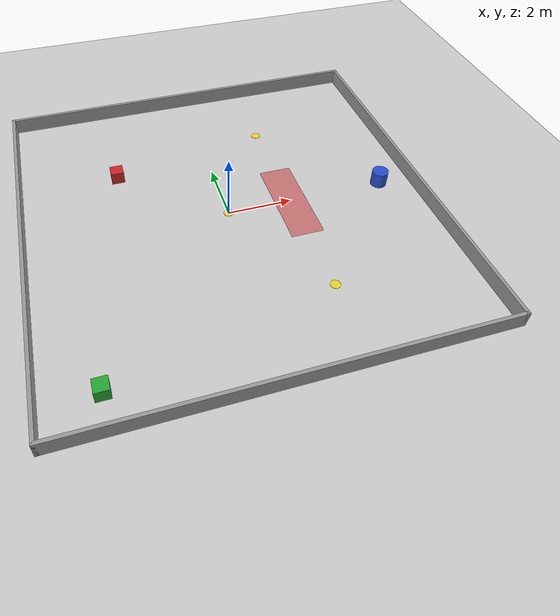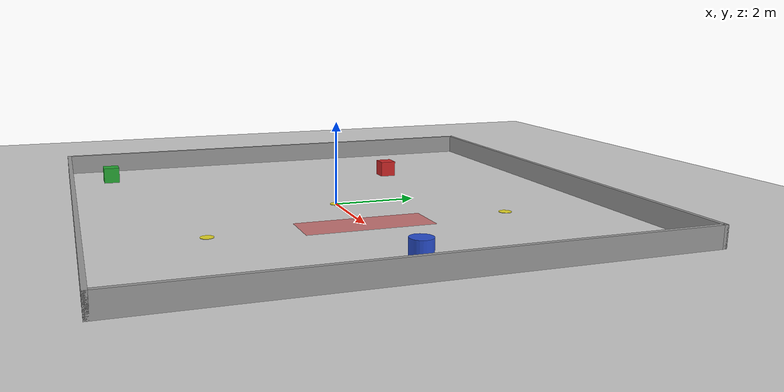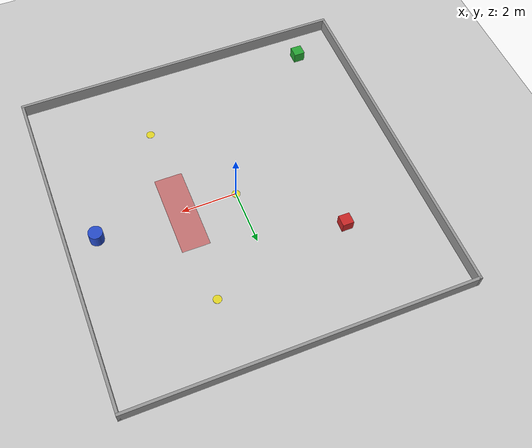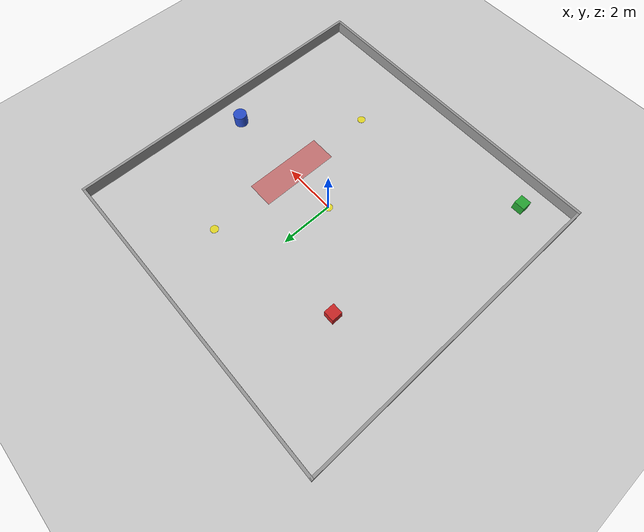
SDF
<?xml version="1.0"?>
<!-- 自動生成: sim/tools/gen_world.py (landmarks.yaml が出典。直接編集しない) -->
<sdf version="1.6">
  <world name="pai_world">
    <include><uri>model://sun</uri></include>
    <include><uri>model://ground_plane</uri></include>
    <physics type="ode">
      <max_step_size>0.004</max_step_size>
      <real_time_factor>1.0</real_time_factor>
      <real_time_update_rate>250</real_time_update_rate>
    </physics>
    <plugin name="gazebo_ros_state" filename="libgazebo_ros_state.so">
      <ros><namespace>/gazebo</namespace></ros>
      <update_rate>1.0</update_rate>
    </plugin>
    <gui><camera name="user_camera"><pose>0 -11 10 0 0.8 1.5708</pose></camera></gui>
    <model name='wall_n'><static>true</static><pose>0 6.05 0.25 0 0 0</pose><link name='l'><collision name='c'><geometry><box><size>12.2 0.1 0.5</size></box></geometry></collision><visual name='v'><geometry><box><size>12.2 0.1 0.5</size></box></geometry><material><script><uri>file://media/materials/scripts/gazebo.material</uri><name>Gazebo/Grey</name></script></material></visual></link></model>
    <model name='wall_s'><static>true</static><pose>0 -6.05 0.25 0 0 0</pose><link name='l'><collision name='c'><geometry><box><size>12.2 0.1 0.5</size></box></geometry></collision><visual name='v'><geometry><box><size>12.2 0.1 0.5</size></box></geometry><material><script><uri>file://media/materials/scripts/gazebo.material</uri><name>Gazebo/Grey</name></script></material></visual></link></model>
    <model name='wall_e'><static>true</static><pose>6.05 0 0.25 0 0 0</pose><link name='l'><collision name='c'><geometry><box><size>0.1 12.2 0.5</size></box></geometry></collision><visual name='v'><geometry><box><size>0.1 12.2 0.5</size></box></geometry><material><script><uri>file://media/materials/scripts/gazebo.material</uri><name>Gazebo/Grey</name></script></material></visual></link></model>
    <model name='wall_w'><static>true</static><pose>-6.05 0 0.25 0 0 0</pose><link name='l'><collision name='c'><geometry><box><size>0.1 12.2 0.5</size></box></geometry></collision><visual name='v'><geometry><box><size>0.1 12.2 0.5</size></box></geometry><material><script><uri>file://media/materials/scripts/gazebo.material</uri><name>Gazebo/Grey</name></script></material></visual></link></model>
    <model name='red_box'><pose>-3.0 2.5 0.2 0 0 0</pose><link name='l'><inertial><mass>10.0</mass><inertia><ixx>0.2667</ixx><iyy>0.2667</iyy><izz>0.2667</izz></inertia></inertial><collision name='c'><geometry><box><size>0.4 0.4 0.4</size></box></geometry></collision><visual name='v'><geometry><box><size>0.4 0.4 0.4</size></box></geometry><material><script><uri>file://media/materials/scripts/gazebo.material</uri><name>Gazebo/Red</name></script></material></visual></link></model>
    <model name='blue_cylinder'><pose>5.0 0.0 0.25 0 0 0</pose><link name='l'><inertial><mass>10.0</mass><inertia><ixx>0.3646</ixx><iyy>0.3646</iyy><izz>0.3125</izz></inertia></inertial><collision name='c'><geometry><cylinder><radius>0.25</radius><length>0.5</length></cylinder></geometry></collision><visual name='v'><geometry><cylinder><radius>0.25</radius><length>0.5</length></cylinder></geometry><material><script><uri>file://media/materials/scripts/gazebo.material</uri><name>Gazebo/Blue</name></script></material></visual></link></model>
    <model name='green_cube'><pose>-4.5 -5.0 0.2 0 0 0</pose><link name='l'><inertial><mass>10.0</mass><inertia><ixx>0.2667</ixx><iyy>0.2667</iyy><izz>0.2667</izz></inertia></inertial><collision name='c'><geometry><box><size>0.4 0.4 0.4</size></box></geometry></collision><visual name='v'><geometry><box><size>0.4 0.4 0.4</size></box></geometry><material><script><uri>file://media/materials/scripts/gazebo.material</uri><name>Gazebo/Green</name></script></material></visual></link></model>
    <model name='wp_north'><static>true</static><pose>2.0 3.5 0.005 0 0 0</pose><link name='l'><visual name='v'><geometry><cylinder><radius>0.15</radius><length>0.01</length></cylinder></geometry><material><script><uri>file://media/materials/scripts/gazebo.material</uri><name>Gazebo/Yellow</name></script></material></visual></link></model>
    <model name='wp_south'><static>true</static><pose>2.0 -3.5 0.005 0 0 0</pose><link name='l'><visual name='v'><geometry><cylinder><radius>0.15</radius><length>0.01</length></cylinder></geometry><material><script><uri>file://media/materials/scripts/gazebo.material</uri><name>Gazebo/Yellow</name></script></material></visual></link></model>
    <model name='wp_origin'><static>true</static><pose>0.0 0.0 0.005 0 0 0</pose><link name='l'><visual name='v'><geometry><cylinder><radius>0.15</radius><length>0.01</length></cylinder></geometry><material><script><uri>file://media/materials/scripts/gazebo.material</uri><name>Gazebo/Yellow</name></script></material></visual></link></model>
    <model name='restricted_zone'><static>true</static><pose>2.0 0.0 0.005 0 0 0</pose><link name='l'><visual name='v'><geometry><box><size>1.0 3.0 0.01</size></box></geometry><material><script><uri>file://media/materials/scripts/gazebo.material</uri><name>Gazebo/RedTransparent</name></script></material></visual></link></model>
  </world>
</sdf>
